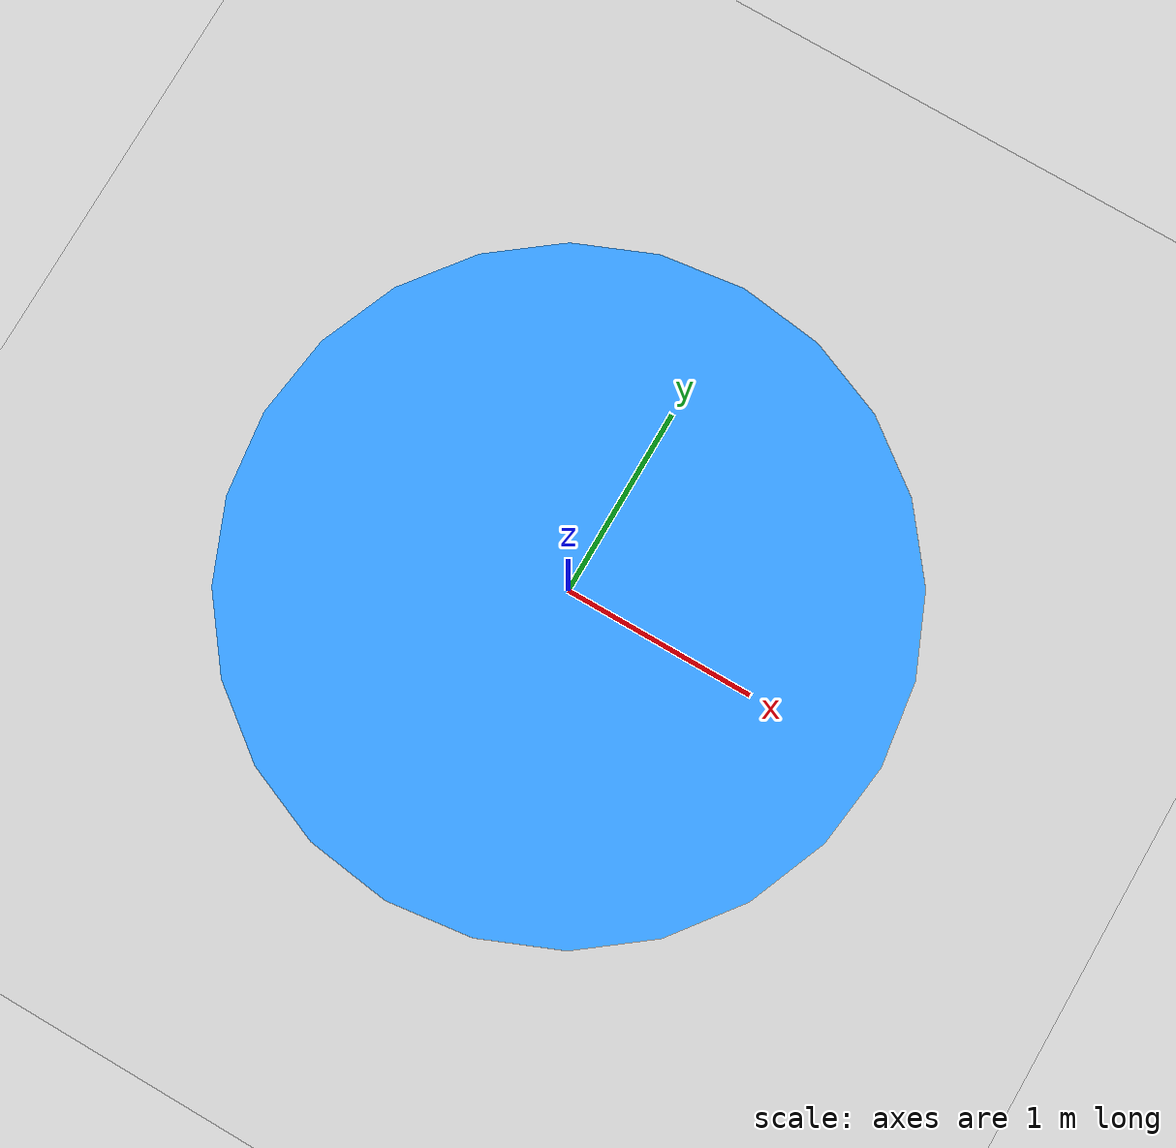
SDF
<?xml version="1.0" ?>
<sdf version="1.5">
  <world name="default">

    <gui>
      <camera name="user_camera">
        <pose>0 0 5 0 0 0</pose>
        <view_controller>orbit</view_controller>
      </camera>
    </gui>

    <!-- Embedded sun light -->
    <light name="sun" type="directional">
      <cast_shadows>true</cast_shadows>
      <pose>0 0 10 0 0 0</pose>
      <diffuse>1 1 1 1</diffuse>
      <specular>0.1 0.1 0.1 1</specular>
      <attenuation>
        <range>1000</range>
        <constant>0.9</constant>
        <linear>0.01</linear>
        <quadratic>0.001</quadratic>
      </attenuation>
      <direction>-0.5 0.5 -1</direction>
    </light>

    <!-- Custom ground plane with embedded visuals -->
    <model name='Ground_floor0'>
      <static>true</static>
      <link name='floor_0'>
        <collision name='floor_0_Collision'>
          <geometry>
            <box>
              <size>20 20 0.2</size>
            </box>
          </geometry>
          <pose>0 0 0 0 0 0</pose>
          <surface>
            <friction>
              <ode>
                <mu>0.2</mu>
                <mu2>0.2</mu2>
              </ode>
            </friction>
            <contact>
              <ode/>
            </contact>
            <bounce/>
          </surface>
        </collision>

        <!-- Tiled floor visual -->
        <visual name='floor_0_Visual'>
          <pose>0 0 -0.0 0 0 0</pose>
          <geometry>
            <box>
              <size>20 20 0.2</size>
            </box>
          </geometry>
          <material>
            <ambient>0.8 0.8 0.8 1</ambient>
            <diffuse>0.8 0.8 0.8 1</diffuse>
            <specular>0.1 0.1 0.1 1</specular>
            <emissive>0 0 0 1</emissive>
          </material>
        </visual>

        <!-- Circle overlay visual (simplified) -->
        <visual name='circle'>
          <pose>0 0 0.10001 0 0 0</pose>
          <geometry>
            <cylinder>
              <radius>1.7</radius>
              <length>0.001</length>
            </cylinder>
          </geometry>
          <material>
            <ambient>0.2 0.6 1 1</ambient>
            <diffuse>0.2 0.6 1 1</diffuse>
            <emissive>0.1 0.1 0.1 1</emissive>
          </material>
        </visual>

        <self_collide>false</self_collide>
        <kinematic>false</kinematic>
        <gravity>true</gravity>
      </link>
    </model>

    <!-- Physics settings -->
    <physics name='default_physics' default='0' type='ode'>
      <gravity>0 0 -9.81</gravity>
      <ode>
        <solver>
          <type>quick</type>
          <iters>500</iters>
          <sor>1.3</sor>
          <use_dynamic_moi_rescaling>0</use_dynamic_moi_rescaling>
        </solver>
        <constraints>
          <cfm>0</cfm>
          <erp>0.2</erp>
          <contact_max_correcting_vel>100</contact_max_correcting_vel>
          <contact_surface_layer>0.001</contact_surface_layer>
        </constraints>
      </ode>
      <max_step_size>0.001</max_step_size>
      <real_time_factor>1</real_time_factor>
      <real_time_update_rate>1000</real_time_update_rate>
      <magnetic_field>0 0 0</magnetic_field>
    </physics>

  </world>
</sdf>
